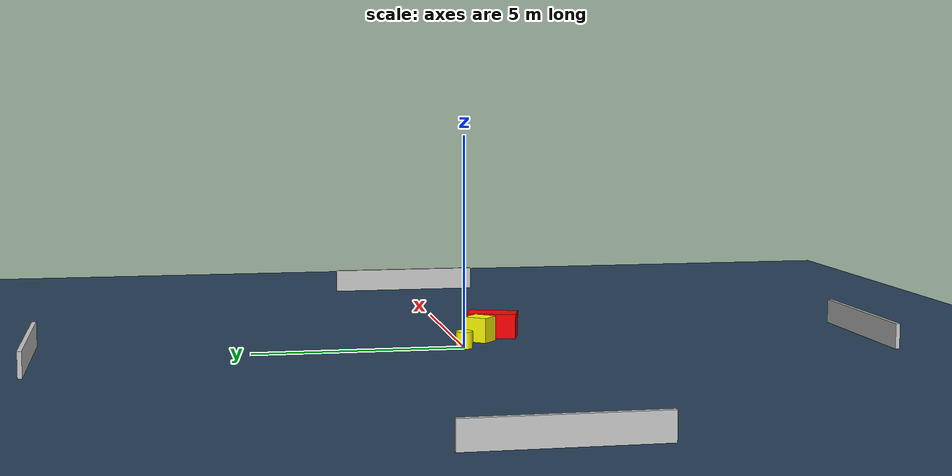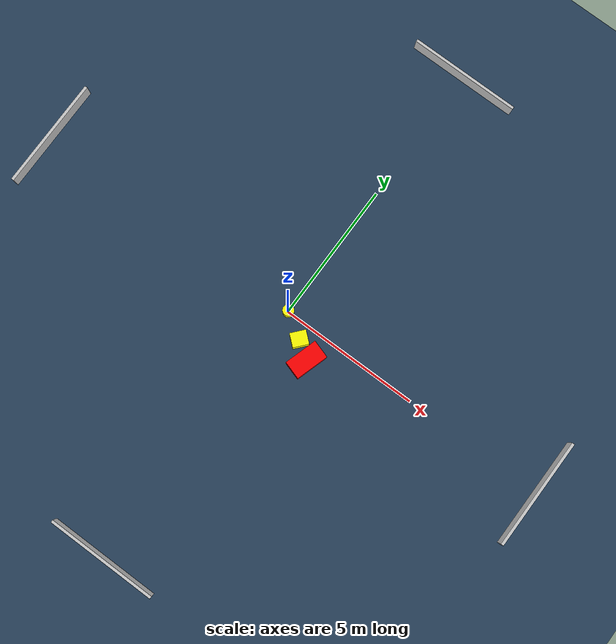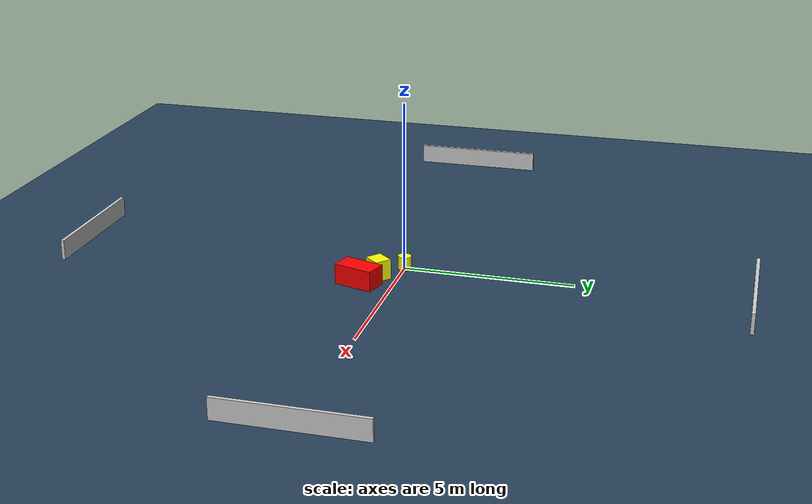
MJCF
<?xml version="1.0" ?>
<mujoco model="generated_environment">
  <option timestep="0.01" integrator="RK4" cone="elliptic"/>
  <default>
    <geom density="1"/>
  </default>
  <asset>
    <texture builtin="gradient" height="3072" name="skybox" rgb1="0.3 0.5 0.7" rgb2="0 0 0" type="skybox" width="512"/>
    <texture builtin="checker" height="300" name="groundplane" rgb1="0.2 0.3 0.4" rgb2="0.1 0.2 0.3" type="2d" width="300"/>
    <material name="groundplane" reflectance="0.2" texrepeat="5 5" texture="groundplane"/>
  </asset>
  <worldbody>
    <light dir="0 0 -1" directional="true" pos="0 0 1.5"/>
    <geom condim="3" friction="0.5 0.005 0.001" material="groundplane" name="floor" pos="0 0 0" size="0 0 0.05" type="plane"/>
    <body name="walls">
      <geom name="wall_1" condim="4" pos="-10.0 0.0 0.3" rgba="0.800000011920929 0.800000011920929 0.800000011920929 1.0" size="0.05 2.0 0.3" type="box"/>
      <geom name="wall_2" condim="4" pos="10.0 0.0 0.3" rgba="0.800000011920929 0.800000011920929 0.800000011920929 1.0" size="0.05 2.0 0.3" type="box"/>
      <geom name="wall_3" condim="4" pos="0.0 -10.0 0.3" rgba="0.800000011920929 0.800000011920929 0.800000011920929 1.0" size="2.0 0.05 0.3" type="box"/>
      <geom name="wall_4" condim="4" pos="0.0 10.0 0.3" rgba="0.800000011920929 0.800000011920929 0.800000011920929 1.0" size="2.0 0.05 0.3" type="box"/>
    </body>
    <body name="robot">
      <joint name="joint_x" type="slide" pos="0 0 0" axis="1 0 0"/>
      <joint name="joint_y" type="slide" pos="0 0 0" axis="0 1 0"/>
      <geom name="robot" type="cylinder" pos="0.0 0.0 0.2" size="0.2 0.2 0.0" mass="5.0" friction="1.0 0.005 0.0001" condim="4" rgba="1.0 1.0 0.0 1.0"/>
    </body>
    <body name="obstacle_1_movable">
      <geom name="obstacle_1_movable" condim="4" pos="0.8598131400940086 -0.5558264971021709 0.3" euler="0 0 319.28275600999393" friction="0.0 0.005 0.001" rgba="1.0 1.0 0.0 1.0" size="0.2467679004453162 0.2798656443780478 0.3" type="box" mass="0.1"/>
      <joint type="free"/>
    </body>
    <body name="obstacle_2_static">
      <geom name="obstacle_2_static" condim="4" pos="1.4577587058481571 -0.9709164621420694 0.3" euler="0 0 252.89156205730023" friction="0.0 0.005 0.001" rgba="1.0 0.0 0.0 1.0" size="0.5949959300336434 0.32864686620495753 0.3" type="box"/>
    </body>
  </worldbody>
  <actuator>
    <motor name="actuator_x" joint="joint_x" gear="1" ctrlrange="-1 1"/>
    <motor name="actuator_y" joint="joint_y" gear="1" ctrlrange="-1 1"/>
  </actuator>
</mujoco>
